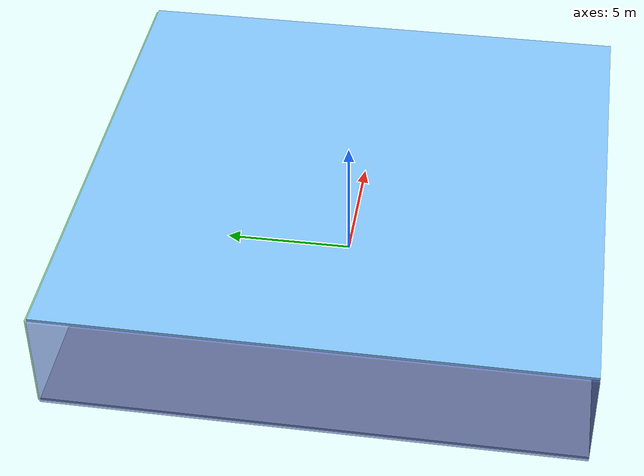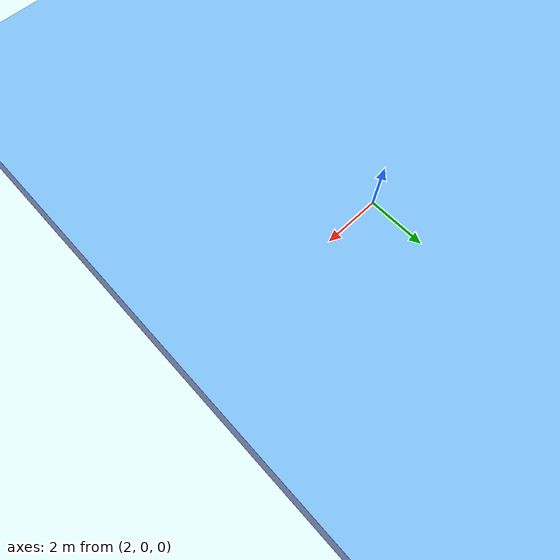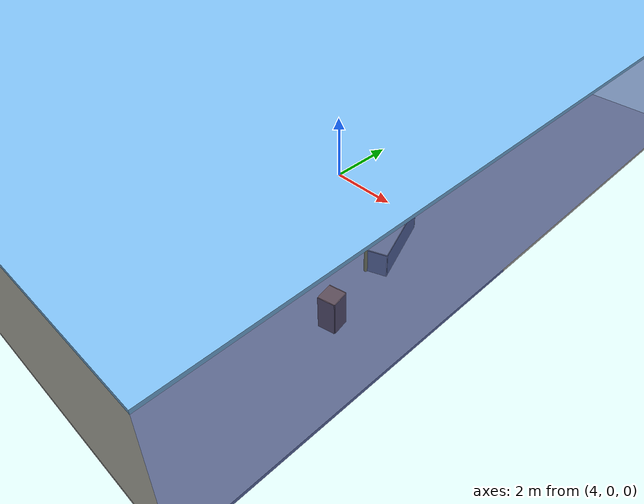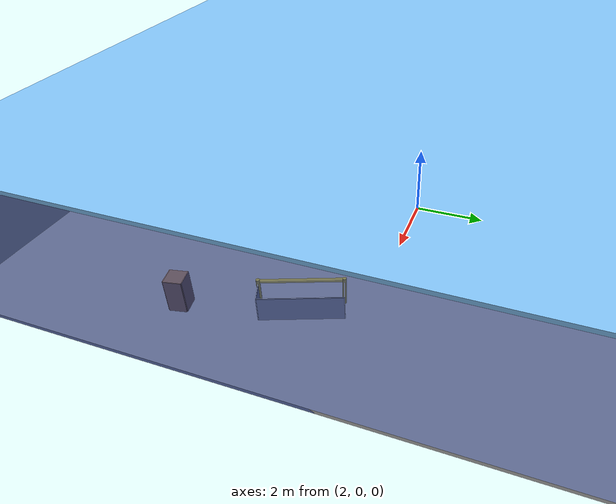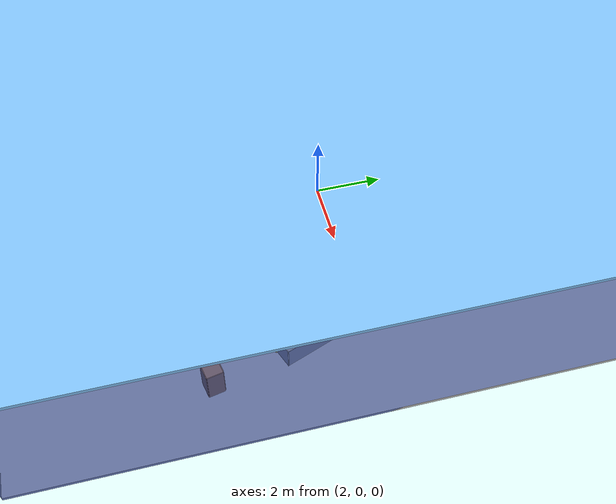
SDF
<sdf version="1.4">
 <world name="default">
  <physics type="ode">
   <max_step_size>0.001</max_step_size>
   <real_time_factor>1</real_time_factor>
   <real_time_update_rate>1000</real_time_update_rate>
   <gravity>0 0 -9.8</gravity>
  </physics>
  <scene><ambient>0.4 0.4 0.4 1</ambient><background>0.7 0.7 0.7 1</background><shadows>1</shadows></scene>
  <model name="Surrounding">
   <static>1</static>
   <link name="Ceiling">
    <collision name="Ceiling_Collision"><geometry><box><size>20 20 0.1</size></box></geometry></collision>
    <visual name="Ceiling_Visual">
     <geometry><box><size>20 20 0.1</size></box></geometry>
     <material>
      <script><uri>file://media/materials/scripts/gazebo.material</uri><name>Gazebo/SkyBlue</name></script>
     </material>
    </visual>
    <pose>0 0 4.05 0 0 0</pose>
   </link>
   <link name="Wall_South">
    <collision name="Wall_South_Collision">
     <geometry><box><size>20 0 4</size></box></geometry>
     <pose>0 0 2 0 -0 0</pose>
    </collision>
    <visual name="Wall_South_Visual">
     <pose>0 0 2 0 -0 0</pose>
     <geometry><box><size>20 0 4</size></box></geometry>
     <material>
      <script><uri>file://media/materials/scripts/gazebo.material</uri><name>Gazebo/PaintedWall</name></script>
     </material>
    </visual>
    <velocity_decay><linear>0</linear><angular>0</angular></velocity_decay>
    <pose>0 -10 0 0 -0 0</pose>
   </link>
   <link name="Wall_East">
    <collision name="Wall_21_Collision">
     <geometry><box><size>20 0 4</size></box></geometry>
     <pose>0 0 2 0 -0 0</pose>
    </collision>
    <visual name="Wall_21_Visual">
     <pose>0 0 2 0 -0 0</pose>
     <geometry><box><size>20 0 4</size></box></geometry>
     <material>
      <script><uri>file://media/materials/scripts/gazebo.material</uri><name>Gazebo/BlueTransparent</name></script>
     </material>
    </visual>
    <velocity_decay><linear>0</linear><angular>0</angular></velocity_decay>
    <pose>10 0 0 0 -0 1.5708</pose>
   </link>
   <link name="Wall_North">
    <collision name="Wall_22_Collision">
     <geometry><box><size>20 0.2 4</size></box></geometry>
     <pose>0 0 2 0 -0 0</pose>
    </collision>
    <visual name="Wall_22_Visual">
     <pose>0 0 2 0 -0 0</pose>
     <geometry><box><size>20 0.2 4</size></box></geometry>
     <material>
      <script><uri>file://media/materials/scripts/gazebo.material</uri><name>Gazebo/GreenTransparent</name></script>
     </material>
    </visual>
    <velocity_decay><linear>0</linear><angular>0</angular></velocity_decay>
    <pose>0 10 0 0 -0 0</pose>
   </link>
   <link name="Wall_West">
    <collision name="Wall_23_Collision">
     <geometry><box><size>20 0.2 4</size></box></geometry>
     <pose>0 0 2 0 -0 0</pose>
    </collision>
    <visual name="Wall_23_Visual">
     <pose>0 0 2 0 -0 0</pose>
     <geometry><box><size>20 0.2 4</size></box></geometry>
     <material>
      <script><uri>file://media/materials/scripts/gazebo.material</uri><name>Gazebo/BlueTransparent</name></script>
     </material>
    </visual>
    <velocity_decay><linear>0</linear><angular>0</angular></velocity_decay>
    <pose>-10 0 0 0 0 -1.5708</pose>
   </link>
   <link name="Ground_link">
    <collision name="collision">
     <pose>0 0 .05 0 -0 0</pose>
     <geometry><box><size>20 20 0.1</size></box></geometry>
    </collision>
    <visual name="visual">
     <pose>0 0 .05 0 -0 0</pose>
     <geometry><box><size>20 20 0.1</size></box></geometry>
     <material>
      <script><uri>file://media/materials/scripts/gazebo.material</uri><name>Gazebo/CloudySky</name></script>
     </material>
    </visual>
   </link>
   <static>1</static>
  </model>
  <spherical_coordinates>
   <surface_model>EARTH_WGS84</surface_model>
   <latitude_deg>0</latitude_deg>
   <longitude_deg>0</longitude_deg>
   <elevation>0</elevation>
   <heading_deg>0</heading_deg>
  </spherical_coordinates>
  <light name="lightball_0" type="diffuse">
   <diffuse>0.8 0.8 0.8 1</diffuse>
   <specular>0.2 0.2 0.2 1</specular>
   <attenuation>
    <range>100</range>
    <constant>0.7</constant>
    <linear>0.01</linear>
    <quadratic>0.001</quadratic>
   </attenuation>
   <direction>-0.5 0.1 -0.9</direction>
   <pose>-6.57554159547 0.114096507714 1.21470097221 0 0 0</pose>
  </light>
  <light name="lightball_1" type="diffuse">
   <diffuse>0.8 0.8 0.8 1</diffuse>
   <specular>0.2 0.2 0.2 1</specular>
   <attenuation>
    <range>100</range>
    <constant>0.7</constant>
    <linear>0.01</linear>
    <quadratic>0.001</quadratic>
   </attenuation>
   <direction>-0.5 0.1 -0.9</direction>
   <pose>-8.71494427934 -5.62885497642 2.00649359578 0 0 0</pose>
  </light>
  <light name="lightball_2" type="diffuse">
   <diffuse>0.8 0.8 0.8 1</diffuse>
   <specular>0.2 0.2 0.2 1</specular>
   <attenuation>
    <range>100</range>
    <constant>0.7</constant>
    <linear>0.01</linear>
    <quadratic>0.001</quadratic>
   </attenuation>
   <direction>-0.5 0.1 -0.9</direction>
   <pose>-2.862683561 6.13380160466 3.34245204657 0 0 0</pose>
  </light>
  <light name="lightball_3" type="diffuse">
   <diffuse>0.8 0.8 0.8 1</diffuse>
   <specular>0.2 0.2 0.2 1</specular>
   <attenuation>
    <range>100</range>
    <constant>0.7</constant>
    <linear>0.01</linear>
    <quadratic>0.001</quadratic>
   </attenuation>
   <direction>-0.5 0.1 -0.9</direction>
   <pose>-4.88756477904 -9.69646933825 3.72937335315 0 0 0</pose>
  </light>
  <light name="lightball_4" type="diffuse">
   <diffuse>0.8 0.8 0.8 1</diffuse>
   <specular>0.2 0.2 0.2 1</specular>
   <attenuation>
    <range>100</range>
    <constant>0.7</constant>
    <linear>0.01</linear>
    <quadratic>0.001</quadratic>
   </attenuation>
   <direction>-0.5 0.1 -0.9</direction>
   <pose>8.80335274584 1.86652172962 0.854344576658 0 0 0</pose>
  </light>
  <light name="lightball_5" type="diffuse">
   <diffuse>0.8 0.8 0.8 1</diffuse>
   <specular>0.2 0.2 0.2 1</specular>
   <attenuation>
    <range>100</range>
    <constant>0.7</constant>
    <linear>0.01</linear>
    <quadratic>0.001</quadratic>
   </attenuation>
   <direction>-0.5 0.1 -0.9</direction>
   <pose>4.90076878271 -4.73421157508 0.708369151453 0 0 0</pose>
  </light>
  <light name="lightball_6" type="diffuse">
   <diffuse>0.8 0.8 0.8 1</diffuse>
   <specular>0.2 0.2 0.2 1</specular>
   <attenuation>
    <range>100</range>
    <constant>0.7</constant>
    <linear>0.01</linear>
    <quadratic>0.001</quadratic>
   </attenuation>
   <direction>-0.5 0.1 -0.9</direction>
   <pose>3.68142512743 7.29542753056 1.24962884516 0 0 0</pose>
  </light>
  <light name="lightball_7" type="diffuse">
   <diffuse>0.8 0.8 0.8 1</diffuse>
   <specular>0.2 0.2 0.2 1</specular>
   <attenuation>
    <range>100</range>
    <constant>0.7</constant>
    <linear>0.01</linear>
    <quadratic>0.001</quadratic>
   </attenuation>
   <direction>-0.5 0.1 -0.9</direction>
   <pose>-7.32878400701 0.512611254493 2.52799216064 0 0 0</pose>
  </light>
  <light name="lightball_8" type="diffuse">
   <diffuse>0.8 0.8 0.8 1</diffuse>
   <specular>0.2 0.2 0.2 1</specular>
   <attenuation>
    <range>100</range>
    <constant>0.7</constant>
    <linear>0.01</linear>
    <quadratic>0.001</quadratic>
   </attenuation>
   <direction>-0.5 0.1 -0.9</direction>
   <pose>-9.31639830266 -8.1136316624 3.77598345281 0 0 0</pose>
  </light>
  <light name="lightball_9" type="diffuse">
   <diffuse>0.8 0.8 0.8 1</diffuse>
   <specular>0.2 0.2 0.2 1</specular>
   <attenuation>
    <range>100</range>
    <constant>0.7</constant>
    <linear>0.01</linear>
    <quadratic>0.001</quadratic>
   </attenuation>
   <direction>-0.5 0.1 -0.9</direction>
   <pose>8.36740519784 0.329614937794 1.72211152134 0 0 0</pose>
  </light>
  <light name="lightball_10" type="diffuse">
   <diffuse>0.8 0.8 0.8 1</diffuse>
   <specular>0.2 0.2 0.2 1</specular>
   <attenuation>
    <range>100</range>
    <constant>0.7</constant>
    <linear>0.01</linear>
    <quadratic>0.001</quadratic>
   </attenuation>
   <direction>-0.5 0.1 -0.9</direction>
   <pose>-0.802013550643 -7.91877966337 1.68630283909 0 0 0</pose>
  </light>
  <include><uri>model://cabinet</uri><pose>-4.87429234098 -2.03782984349 0 0 0 0.80826406864</pose></include>
  <include>
   <uri>model://textured_shapes</uri>
   <pose>-4.49819769087 1.08132616453 0 0 0 0.41664791775</pose>
  </include>
  <include>
   <uri>model://textured_shapes</uri>
   <pose>-3.82092518788 7.58728717064 0 0 0 2.35276637363</pose>
  </include>
  <include><uri>model://cabinet</uri><pose>8.21094999505 -4.44373145001 0 0 0 0.196120172755</pose></include>
  <include>
   <uri>model://robocup_3Dsim_goal</uri>
   <pose>7.16637436245 -1.61305546303 0 0 0 0.363292800092</pose>
  </include>
 </world>
</sdf>

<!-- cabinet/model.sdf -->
<sdf version="1.5">
  <model name="cabinet">
    <static>true</static>
    <link name="cabinet_bottom_plate">
      <inertial>
        <pose>0 0 -1 0 0 0</pose>
        <inertia>
          <ixx>2.050000</ixx>
          <ixy>0</ixy>
          <ixz>0</ixz>
          <iyy>2.050000</iyy>
          <iyz>0</iyz>
          <izz>2.050000</izz>
        </inertia>
        <mass>25.000000</mass>
      </inertial>
      <collision name="cabinet_bottom_plate_geom">
        <pose>0 0 0.010000 0 0 0</pose>
        <geometry>
          <box>
            <size>0.450000 0.450000 0.020000</size>
          </box>
        </geometry>
      </collision>
      <visual name="cabinet_bottom_plate_geom_visual">
        <pose>0 0 0.010000 0 0 0</pose>
        <geometry>
          <box>
            <size>0.450000 0.450000 0.020000</size>
          </box>
        </geometry>
        <material>
          <script>
            <uri>model://media/materials/scripts/gazebo.material</uri>
            <name>Gazebo/Wood</name>
          </script>
        </material>
      </visual>
      <collision name="cabinet_bottom_plate_geom_cabinet_back_plate">
        <pose>0.235000 0 0.510000 0 0 0</pose>
        <geometry>
          <box>
            <size>0.020000 0.450000 1.020000</size>
          </box>
        </geometry>
      </collision>
      <visual name="cabinet_bottom_plate_geom_cabinet_back_plate_visual">
        <pose>0.235000 0 0.510000 0 0 0</pose>
        <geometry>
          <box>
            <size>0.020000 0.450000 1.020000</size>
          </box>
        </geometry>
        <material>
          <script>
            <uri>model://media/materials/scripts/gazebo.material</uri>
            <name>Gazebo/Wood</name>
          </script>
        </material>
      </visual>
      <collision name="cabinet_bottom_plate_geom_cabinet_left_plate">
        <pose>0 0.235000 0.510000 0 0 0</pose>
        <geometry>
          <box>
            <size>0.450000 0.020000 1.020000</size>
          </box>
        </geometry>
      </collision>
      <visual name="cabinet_bottom_plate_geom_cabinet_left_plate_visual">
        <pose>0 0.235000 0.510000 0 0 0</pose>
        <geometry>
          <box>
            <size>0.450000 0.020000 1.020000</size>
          </box>
        </geometry>
        <material>
          <script>
            <uri>model://media/materials/scripts/gazebo.material</uri>
            <name>Gazebo/Wood</name>
          </script>
        </material>
      </visual>
      <collision name="cabinet_bottom_plate_geom_cabinet_middle_plate">
        <pose>0 0 0.510000 0 0 0</pose>
        <geometry>
          <box>
            <size>0.450000 0.450000 0.020000</size>
          </box>
        </geometry>
      </collision>
      <visual name="cabinet_bottom_plate_geom_cabinet_middle_plate_visual">
        <pose>0 0 0.510000 0 0 0</pose>
        <geometry>
          <box>
            <size>0.450000 0.450000 0.020000</size>
          </box>
        </geometry>
        <material>
          <script>
            <uri>model://media/materials/scripts/gazebo.material</uri>
            <name>Gazebo/Wood</name>
          </script>
        </material>
      </visual>
      <collision name="cabinet_bottom_plate_geom_cabinet_right_plate">
        <pose>0 -0.235000 0.510000 0 0 0</pose>
        <geometry>
          <box>
            <size>0.450000 0.020000 1.020000</size>
          </box>
        </geometry>
      </collision>
      <visual name="cabinet_bottom_plate_geom_cabinet_right_plate_visual">
        <pose>0 -0.235000 0.510000 0 0 0</pose>
        <geometry>
          <box>
            <size>0.450000 0.020000 1.020000</size>
          </box>
        </geometry>
        <material>
          <script>
            <uri>model://media/materials/scripts/gazebo.material</uri>
            <name>Gazebo/Wood</name>
          </script>
        </material>
      </visual>
      <collision name="cabinet_bottom_plate_geom_cabinet_top_plate">
        <pose>0 0 1.010000 0 0 0</pose>
        <geometry>
          <box>
            <size>0.450000 0.450000 0.020000</size>
          </box>
        </geometry>
      </collision>
      <visual name="cabinet_bottom_plate_geom_cabinet_top_plate_visual">
        <pose>0 0 1.010000 0 0 0</pose>
        <geometry>
          <box>
            <size>0.450000 0.450000 0.020000</size>
          </box>
        </geometry>
        <material>
          <script>
            <uri>model://media/materials/scripts/gazebo.material</uri>
            <name>Gazebo/Wood</name>
          </script>
        </material>
      </visual>
    </link>
  </model>
</sdf>

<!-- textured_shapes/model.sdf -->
<sdf version="1.6">
  <model name="textured_shapes">
    <pose>0 0 0.5 0 0 0</pose>
    <link name="box">
      <pose>0 -1.5 0 0 0 0</pose>
      <collision name="collision">
        <geometry>
          <box>
            <size>1 1 1</size>
          </box>
        </geometry>
      </collision>
      <visual name="visual">
        <geometry>
          <box>
            <size>1 1 1</size>
          </box>
        </geometry>
        <material>
          <script>
            <uri>model://../model_source/models/textured_shapes/materials/scripts</uri>
            <uri>model://../model_source/models/textured_shapes/materials/textures</uri>
            <name>TexturedShape/Squares</name>
          </script>
        </material>
      </visual>
    </link>
    <link name="sphere">
      <collision name="collision">
        <geometry>
          <sphere>
            <radius>0.5</radius>
          </sphere>
        </geometry>
      </collision>
      <visual name="visual">
        <geometry>
          <sphere>
            <radius>0.5</radius>
          </sphere>
        </geometry>
        <material>
          <script>
            <uri>model://../model_source/models/textured_shapes/materials/scripts</uri>
            <uri>model://../model_source/models/textured_shapes/materials/textures</uri>
            <name>TexturedShape/Squares</name>
          </script>
        </material>
      </visual>
    </link>
    <link name="cylinder">
      <pose>0 1.5 0 0 0 0</pose>
      <collision name="collision">
        <geometry>
          <cylinder>
            <radius>0.5</radius>
            <length>1</length>
          </cylinder>
        </geometry>
      </collision>
      <visual name="visual">
        <geometry>
          <cylinder>
            <radius>0.5</radius>
            <length>1</length>
          </cylinder>
        </geometry>
        <material>
          <script>
            <uri>model://../model_source/models/textured_shapes/materials/scripts</uri>
            <uri>model://../model_source/models/textured_shapes/materials/textures</uri>
            <name>TexturedShape/Squares</name>
          </script>
        </material>
      </visual>
    </link>
  </model>
</sdf>

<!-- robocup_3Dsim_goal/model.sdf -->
<sdf version="1.5">
  <model name="robocup_3d_goal">
    <static>true</static>
    <link name="left_post">
      <pose>0 1.05 0.45 0 0 0</pose>
      <collision name="collision">
        <geometry>
          <cylinder>
            <radius>0.05</radius>
            <length>0.9</length>
          </cylinder>
        </geometry>
      </collision>
      <visual name="visual">
        <geometry>
          <cylinder>
            <radius>0.05</radius>
            <length>0.9</length>
          </cylinder>
        </geometry>
        <material>
          <script>
            <uri>file://media/materials/scripts/gazebo.material</uri>
            <name>Gazebo/ZincYellow</name>
          </script>
        </material>
      </visual>
    </link>
    <link name="left_support_horiz_lower">
      <pose>0.30 1.05 0.01 0 0 0</pose>
      <collision name="collision">
        <geometry>
          <box>
            <size>0.50 0.02 0.02</size>
          </box>
        </geometry>
      </collision>
      <visual name="visual">
        <geometry>
          <box>
            <size>0.50 0.02 0.02</size>
          </box>
        </geometry>
        <material>
          <script>
            <uri>file://media/materials/scripts/gazebo.material</uri>
            <name>Gazebo/White</name>
          </script>
        </material>
      </visual>
    </link>
    <link name="left_support_horiz_upper">
      <pose>0.30 1.05 0.79 0 0 0</pose>
      <collision name="collision">
        <geometry>
          <box>
            <size>0.50 0.02 0.02</size>
          </box>
        </geometry>
      </collision>
      <visual name="visual">
        <geometry>
          <box>
            <size>0.50 0.02 0.02</size>
          </box>
        </geometry>
        <material>
          <script>
            <uri>file://media/materials/scripts/gazebo.material</uri>
            <name>Gazebo/White</name>
          </script>
        </material>
      </visual>
    </link>
    <link name="left_support_vertical">
      <pose>0.56 1.05 0.4 0 1.5708 0</pose>
      <collision name="collision">
        <geometry>
          <box>
            <size>0.80 0.02 0.02</size>
          </box>
        </geometry>
      </collision>
      <visual name="visual">
        <geometry>
          <box>
            <size>0.80 0.02 0.02</size>
          </box>
        </geometry>
        <material>
          <script>
            <uri>file://media/materials/scripts/gazebo.material</uri>
            <name>Gazebo/White</name>
          </script>
        </material>
      </visual>
    </link>
    <link name="right_support_horiz_lower">
      <pose>0.30 -1.05 0.01 0 0 0</pose>
      <collision name="collision">
        <geometry>
          <box>
            <size>0.50 0.02 0.02</size>
          </box>
        </geometry>
      </collision>
      <visual name="visual">
        <geometry>
          <box>
            <size>0.50 0.02 0.02</size>
          </box>
        </geometry>
        <material>
          <script>
            <uri>file://media/materials/scripts/gazebo.material</uri>
            <name>Gazebo/White</name>
          </script>
        </material>
      </visual>
    </link>
    <link name="right_support_horiz_upper">
      <pose>0.30 -1.05 0.79 0 0 0</pose>
      <collision name="collision">
        <geometry>
          <box>
            <size>0.50 0.02 0.02</size>
          </box>
        </geometry>
      </collision>
      <visual name="visual">
        <geometry>
          <box>
            <size>0.50 0.02 0.02</size>
          </box>
        </geometry>
        <material>
          <script>
            <uri>file://media/materials/scripts/gazebo.material</uri>
            <name>Gazebo/White</name>
          </script>
        </material>
      </visual>
    </link>
    <link name="right_support_vertical">
      <pose>0.56 -1.05 0.4 0 1.5708 0</pose>
      <collision name="collision">
        <geometry>
          <box>
            <size>0.80 0.02 0.02</size>
          </box>
        </geometry>
      </collision>
      <visual name="visual">
        <geometry>
          <box>
            <size>0.80 0.02 0.02</size>
          </box>
        </geometry>
        <material>
          <script>
            <uri>file://media/materials/scripts/gazebo.material</uri>
            <name>Gazebo/White</name>
          </script>
        </material>
      </visual>
    </link>
    <link name="center_support_horiz_lower">
      <pose>0.56 0 0.01 0 1.5708 0</pose>
      <collision name="collision">
        <geometry>
          <box>
            <size>0.02 2.08 0.02</size>
          </box>
        </geometry>
      </collision>
      <visual name="visual">
        <geometry>
          <box>
            <size>0.02 2.08 0.02</size>
          </box>
        </geometry>
        <material>
          <script>
            <uri>file://media/materials/scripts/gazebo.material</uri>
            <name>Gazebo/White</name>
          </script>
        </material>
      </visual>
    </link>
    <link name="center_support_horiz_upper">
      <pose>0.56 0 0.79 0 1.5708 0</pose>
      <collision name="collision">
        <geometry>
          <box>
            <size>0.02 2.08 0.02</size>
          </box>
        </geometry>
      </collision>
      <visual name="visual">
        <geometry>
          <box>
            <size>0.02 2.08 0.02</size>
          </box>
        </geometry>
        <material>
          <script>
            <uri>file://media/materials/scripts/gazebo.material</uri>
            <name>Gazebo/White</name>
          </script>
        </material>
      </visual>
    </link>
    <link name="right_post">
      <pose>0 -1.05 0.45 0 0 0</pose>
      <collision name="collision">
        <geometry>
          <cylinder>
            <radius>0.05</radius>
            <length>0.9</length>
          </cylinder>
        </geometry>
      </collision>
      <visual name="visual">
        <geometry>
          <cylinder>
            <radius>0.05</radius>
            <length>0.9</length>
          </cylinder>
        </geometry>
        <material>
          <script>
            <uri>file://media/materials/scripts/gazebo.material</uri>
            <name>Gazebo/ZincYellow</name>
          </script>
        </material>
      </visual>
    </link>
    <link name="crossbar">
      <pose>0 0 0.85 1.57 1.57 0</pose>
      <collision name="collision">
        <geometry>
          <cylinder>
            <radius>0.05</radius>
            <length>2.0</length>
          </cylinder>
        </geometry>
      </collision>
      <visual name="visual">
        <geometry>
          <cylinder>
            <radius>0.05</radius>
            <length>2.0</length>
          </cylinder>
        </geometry>
        <material>
          <script>
            <uri>file://media/materials/scripts/gazebo.material</uri>
            <name>Gazebo/ZincYellow</name>
          </script>
        </material>
      </visual>
    </link>
    <link name="center_net">
      <pose>0.56 0 0.40 0 0 0</pose>
      <collision name="collision">
        <geometry>
          <box>
            <size>0.01 2.1 0.80</size>
          </box>
        </geometry>
      </collision>
      <visual name="visual">
        <geometry>
          <box>
            <size>0.01 2.1 0.80</size>
          </box>
        </geometry>
        <material>
          <script>
            <uri>model://../model_source/models/robocup09_spl_field/materials/scripts/</uri>
            <uri>model://../model_source/models/robocup09_spl_field/materials/textures/</uri>
            <name>RoboCup/Net</name>
          </script>
        </material>
      </visual>
    </link>
    <link name="left_net">
      <pose>0.30 1.05 0.40 0 0 0</pose>
      <collision name="collision">
        <geometry>
          <box>
            <size>0.50 0.01 0.76</size>
          </box>
        </geometry>
      </collision>
      <visual name="visual">
        <geometry>
          <box>
            <size>0.50 0.01 0.76</size>
          </box>
        </geometry>
        <material>
          <script>
            <uri>model://../model_source/models/robocup09_spl_field/materials/scripts/</uri>
            <uri>model://../model_source/models/robocup09_spl_field/materials/textures/</uri>
            <name>RoboCup/Net</name>
          </script>
        </material>
      </visual>
    </link>
    <link name="right_net">
      <pose>0.30 -1.05 0.40 0 0 0</pose>
      <collision name="collision">
        <geometry>
          <box>
            <size>0.50 0.01 0.76</size>
          </box>
        </geometry>
      </collision>
      <visual name="visual">
        <geometry>
          <box>
            <size>0.50 0.01 0.76</size>
          </box>
        </geometry>
        <material>
          <script>
            <uri>model://../model_source/models/robocup09_spl_field/materials/scripts/</uri>
            <uri>model://../model_source/models/robocup09_spl_field/materials/textures/</uri>
            <name>RoboCup/Net</name>
          </script>
        </material>
      </visual>
    </link>
  </model>
</sdf>
